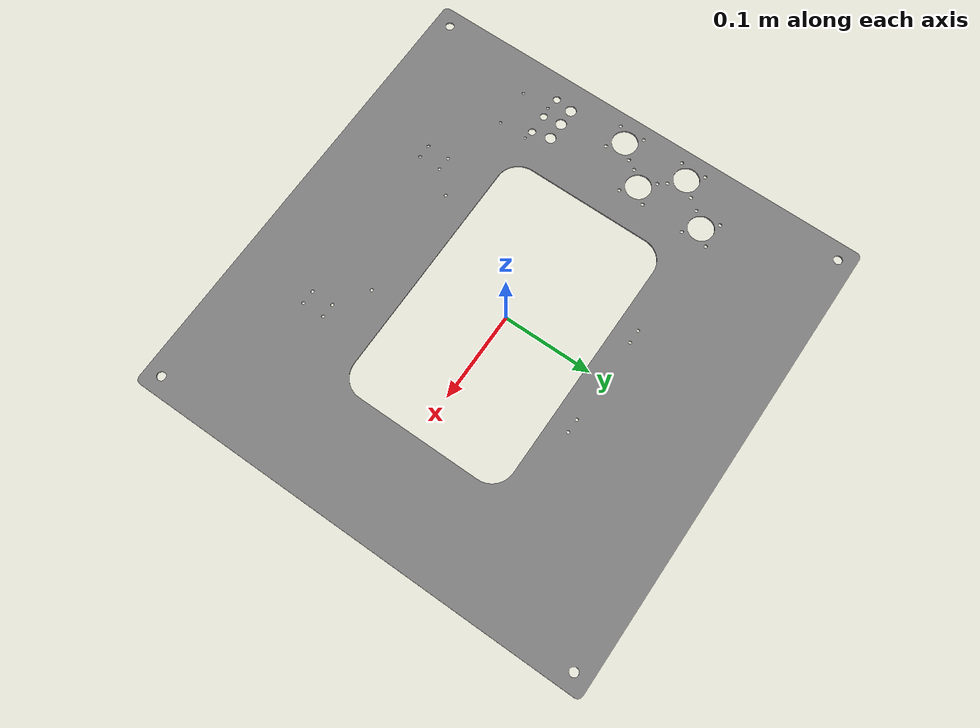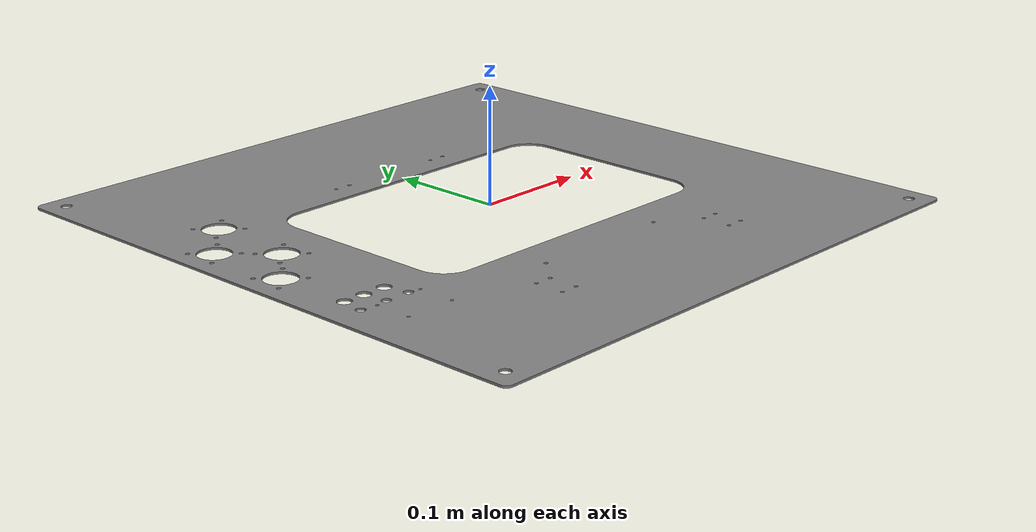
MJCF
<mujoco model="csm_faceplate_cover">
  <default>
    <default class="visual">
      <geom group="2" type="mesh" contype="0" conaffinity="0"/>
    </default>
    <default class="collision">
      <geom group="3" type="mesh"/>
    </default>
  </default>
  <asset>
    <material name="mtl_csm_faceplate_cover" specular="0.20000000000000004" shininess="1.0" rgba="0.50196078 0.50196078 0.50196078 1.0"/>
    <mesh file="csm_faceplate_cover.obj"/>
  </asset>
  <worldbody>
    <body name="csm_faceplate_cover">
      <geom material="mtl_csm_faceplate_cover" mesh="csm_faceplate_cover" class="visual"/>
      <geom mesh="csm_faceplate_cover" class="collision"/>
    </body>
  </worldbody>
</mujoco>
